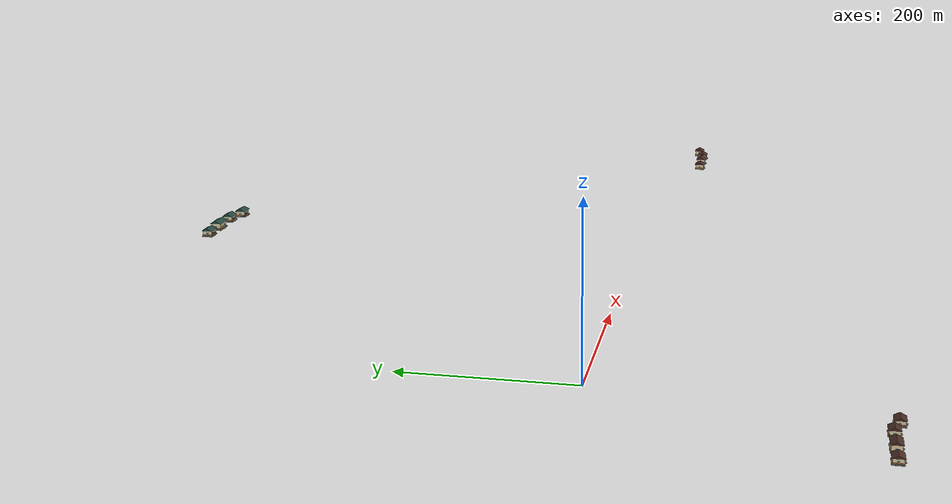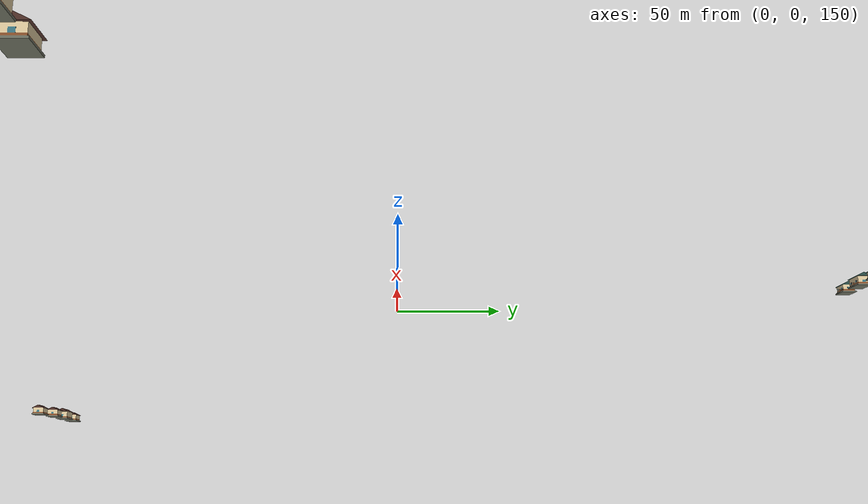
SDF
<?xml version='1.0' encoding='utf-8'?>
<sdf version="1.9">
  <model name="showcase_village">
    <static>true</static>
    <link name="landscape">
      <visual name="cabins">
        <cast_shadows>true</cast_shadows>
        <geometry>
          <mesh>
            <uri>model://showcase_village/meshes/cabins.dae</uri>
          </mesh>
        </geometry>
      </visual>
      <collision name="foundation_0">
        <pose>-353 -280 129.0505865656048 0 0 0</pose>
        <geometry>
          <box>
            <size>9 8 7.0</size>
          </box>
        </geometry>
      </collision>
      <collision name="foundation_1">
        <pose>-333 -280 129.5505865656048 0 0 0</pose>
        <geometry>
          <box>
            <size>12 8 8.0</size>
          </box>
        </geometry>
      </collision>
      <collision name="foundation_2">
        <pose>-310 -280 129.0505865656048 0 0 0</pose>
        <geometry>
          <box>
            <size>9 8 7.0</size>
          </box>
        </geometry>
      </collision>
      <collision name="foundation_3">
        <pose>-293 -285 129.0505865656048 0 0 0</pose>
        <geometry>
          <box>
            <size>9 8 7.0</size>
          </box>
        </geometry>
      </collision>
      <collision name="foundation_4">
        <pose>232 -95 174.0330429163623 0 0 0</pose>
        <geometry>
          <box>
            <size>9 8 7.0</size>
          </box>
        </geometry>
      </collision>
      <collision name="foundation_5">
        <pose>252 -95 174.5330429163623 0 0 0</pose>
        <geometry>
          <box>
            <size>12 8 8.0</size>
          </box>
        </geometry>
      </collision>
      <collision name="foundation_6">
        <pose>275 -95 174.0330429163623 0 0 0</pose>
        <geometry>
          <box>
            <size>9 8 7.0</size>
          </box>
        </geometry>
      </collision>
      <collision name="foundation_7">
        <pose>292 -90 174.0330429163623 0 0 0</pose>
        <geometry>
          <box>
            <size>9 8 7.0</size>
          </box>
        </geometry>
      </collision>
      <collision name="foundation_8">
        <pose>-168 307 201.59680746284016 0 0 0</pose>
        <geometry>
          <box>
            <size>9 8 7.0</size>
          </box>
        </geometry>
      </collision>
      <collision name="foundation_9">
        <pose>-148 307 202.09680746284016 0 0 0</pose>
        <geometry>
          <box>
            <size>12 8 8.0</size>
          </box>
        </geometry>
      </collision>
      <collision name="foundation_10">
        <pose>-125 307 201.59680746284016 0 0 0</pose>
        <geometry>
          <box>
            <size>9 8 7.0</size>
          </box>
        </geometry>
      </collision>
      <collision name="foundation_11">
        <pose>-108 302 201.59680746284016 0 0 0</pose>
        <geometry>
          <box>
            <size>9 8 7.0</size>
          </box>
        </geometry>
      </collision>
    </link>
  </model>
</sdf>
